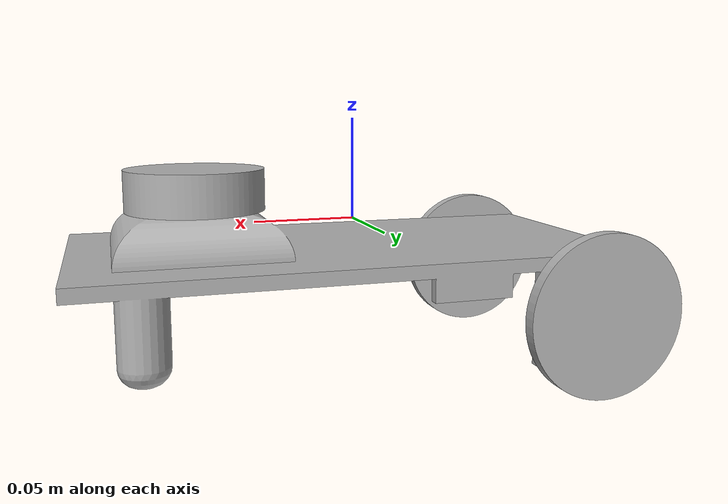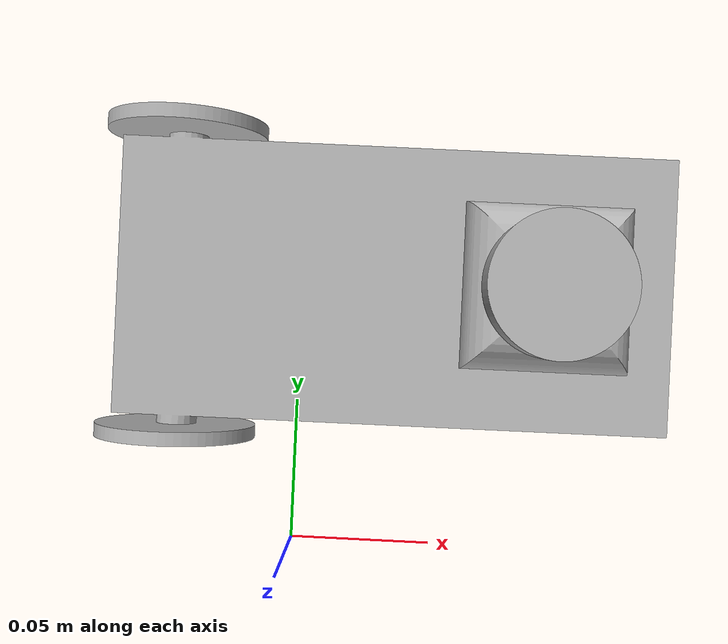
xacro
<?xml version="1.0" ?>
<robot name="final" xmlns:xacro="http://www.ros.org/wiki/xacro">

<xacro:include filename="$(find final_description)/urdf/materials.xacro" />
<xacro:include filename="$(find final_description)/urdf/final.trans" />
<xacro:include filename="$(find final_description)/urdf/final.gazebo" />
<link name="base_link">
  <inertial>
    <origin xyz="0.04584707278212296 0.09318138498345077 0.0011077192884157803" rpy="0 0 0"/>
    <mass value="1.3578824839771013"/>
    <inertia ixx="0.001202" iyy="0.005077" izz="0.005938" ixy="-2.4e-05" iyz="-6e-06" ixz="-0.000199"/>
  </inertial>
  <visual>
    <origin xyz="0 0 0" rpy="0 0 0"/>
    <geometry>
      <mesh filename="package://final_description/meshes/base_link.stl" scale="0.001 0.001 0.001"/>
    </geometry>
    <material name="silver"/>
  </visual>
  <collision>
    <origin xyz="0 0 0" rpy="0 0 0"/>
    <geometry>
      <mesh filename="package://final_description/meshes/base_link.stl" scale="0.001 0.001 0.001"/>
    </geometry>
  </collision>
</link>

<link name="leftwheel_1">
  <inertial>
    <origin xyz="2.9469998018283317e-08 -0.0024998824687530938 -6.986912337580975e-08" rpy="0 0 0"/>
    <mass value="0.1109767604880594"/>
    <inertia ixx="2.5e-05" iyy="5e-05" izz="2.5e-05" ixy="0.0" iyz="0.0" ixz="0.0"/>
  </inertial>
  <visual>
    <origin xyz="0.047609 -0.03776 0.015854" rpy="0 0 0"/>
    <geometry>
      <mesh filename="package://final_description/meshes/leftwheel_1.stl" scale="0.001 0.001 0.001"/>
    </geometry>
    <material name="silver"/>
  </visual>
  <collision>
    <origin xyz="0.047609 -0.03776 0.015854" rpy="0 0 0"/>
    <geometry>
      <mesh filename="package://final_description/meshes/leftwheel_1.stl" scale="0.001 0.001 0.001"/>
    </geometry>
  </collision>
</link>

<link name="rightwheel_1">
  <inertial>
    <origin xyz="-2.3376230652571994e-07 0.0025001175312469037 3.150372342129726e-07" rpy="0 0 0"/>
    <mass value="0.1109767604880594"/>
    <inertia ixx="2.5e-05" iyy="5e-05" izz="2.5e-05" ixy="0.0" iyz="0.0" ixz="0.0"/>
  </inertial>
  <visual>
    <origin xyz="0.047509 -0.14776 0.015805" rpy="0 0 0"/>
    <geometry>
      <mesh filename="package://final_description/meshes/rightwheel_1.stl" scale="0.001 0.001 0.001"/>
    </geometry>
    <material name="silver"/>
  </visual>
  <collision>
    <origin xyz="0.047509 -0.14776 0.015805" rpy="0 0 0"/>
    <geometry>
      <mesh filename="package://final_description/meshes/rightwheel_1.stl" scale="0.001 0.001 0.001"/>
    </geometry>
  </collision>
</link>

<link name="liar_1">
  <inertial>
    <origin xyz="-1.6001668542986458e-07 4.102526195981504e-07 0.0075" rpy="0 0 0"/>
    <mass value="0.23120158435012378"/>
    <inertia ixx="4e-05" iyy="4e-05" izz="7.2e-05" ixy="-0.0" iyz="-0.0" ixz="0.0"/>
  </inertial>
  <visual>
    <origin xyz="-0.087843 -0.094427 -0.02" rpy="0 0 0"/>
    <geometry>
      <mesh filename="package://final_description/meshes/liar_1.stl" scale="0.001 0.001 0.001"/>
    </geometry>
    <material name="silver"/>
  </visual>
  <collision>
    <origin xyz="-0.087843 -0.094427 -0.02" rpy="0 0 0"/>
    <geometry>
      <mesh filename="package://final_description/meshes/liar_1.stl" scale="0.001 0.001 0.001"/>
    </geometry>
  </collision>
</link>

<joint name="Rev1" type="continuous">
  <origin xyz="-0.047609 0.03776 -0.015854" rpy="0 0 0"/>
  <parent link="base_link"/>
  <child link="leftwheel_1"/>
  <axis xyz="0.0 1.0 0.0"/>
</joint>

<joint name="Rev2" type="continuous">
  <origin xyz="-0.047509 0.14776 -0.015805" rpy="0 0 0"/>
  <parent link="base_link"/>
  <child link="rightwheel_1"/>
  <axis xyz="0.0 1.0 0.0"/>
</joint>

<joint name="Rigid3" type="fixed">
  <origin xyz="0.087843 0.094427 0.02" rpy="0 0 0"/>
  <parent link="base_link"/>
  <child link="liar_1"/>
</joint>

</robot>

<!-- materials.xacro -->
<robot name="final" xmlns:xacro="http://www.ros.org/wiki/xacro" >

<material name="silver">
  <color rgba="0.700 0.700 0.700 1.000"/>
</material>

</robot>

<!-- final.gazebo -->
<robot name="final" xmlns:xacro="http://www.ros.org/wiki/xacro" >

<xacro:property name="body_color" value="Gazebo/Silver" />

<gazebo>
  <plugin name="control" filename="libgazebo_ros_control.so"/>
</gazebo>
<gazebo reference="base_link">
  <material>${body_color}</material>
  <mu1>3500</mu1>
  <mu2>3500</mu2>
  <selfCollide>true</selfCollide>
  <gravity>true</gravity>
</gazebo>

<gazebo reference="leftwheel_1">
  <material>${body_color}</material>
  <mu1>3500</mu1>
  <mu2>3500</mu2>
  <selfCollide>true</selfCollide>
</gazebo>

<gazebo reference="rightwheel_1">
  <material>${body_color}</material>
  <mu1>3500</mu1>
  <mu2>3500</mu2>
  <selfCollide>true</selfCollide>
</gazebo>

<gazebo reference="liar_1">
  <material>${body_color}</material>
  <mu1>3500</mu1>
  <mu2>3500</mu2>
  <selfCollide>true</selfCollide>
</gazebo>
  <gazebo>
  <plugin name="differential_drive_controller" filename="libgazebo_ros_diff_drive.so">

    <!-- Plugin update rate in Hz -->
    <updateRate>${1000}</updateRate>

    <!-- Name of left joint, defaults to `left_joint` -->
    <leftJoint>Rev1</leftJoint>

    <!-- Name of right joint, defaults to `right_joint` -->
    <rightJoint>Rev2</rightJoint>

    <!-- The distance from the center of one wheel to the other, in meters, defaults to 0.34 m -->
    <wheelSeparation>0.5380</wheelSeparation>

    <!-- Diameter of the wheels, in meters, defaults to 0.15 m -->
    <wheelDiameter>0.2410</wheelDiameter>

    <!-- Wheel acceleration, in rad/s^2, defaults to 0.0 rad/s^2 -->
    <wheelAcceleration>1.0</wheelAcceleration>

    <!-- Maximum torque which the wheels can produce, in Nm, defaults to 5 Nm -->
    <wheelTorque>20</wheelTorque>

    <!-- Topic to receive geometry_msgs/Twist message commands, defaults to `cmd_vel` -->
    <commandTopic>cmd_vel</commandTopic>

    <!-- Topic to publish nav_msgs/Odometry messages, defaults to `odom` -->
    <odometryTopic>odom</odometryTopic>

    <!-- Odometry frame, defaults to `odom` -->
    <odometryFrame>odom</odometryFrame>

    <!-- Robot frame to calculate odometry from, defaults to `base_footprint` -->
    <robotBaseFrame>base_link</robotBaseFrame>

    <!-- Odometry source, 0 for ENCODER, 1 for WORLD, defaults to WORLD -->
    <odometrySource>1</odometrySource>

    <!-- Set to true to publish transforms for the wheel links, defaults to false -->
    <publishWheelTF>true</publishWheelTF>

    <!-- Set to true to publish transforms for the odometry, defaults to true -->
    <publishOdom>true</publishOdom>

    <!-- Set to true to publish sensor_msgs/JointState on /joint_states for the wheel joints, defaults to false -->
    <publishWheelJointState>true</publishWheelJointState>

    <!-- Set to true to swap right and left wheels, defaults to true -->
    <legacyMode>false</legacyMode>
  </plugin>
</gazebo>

</robot>
